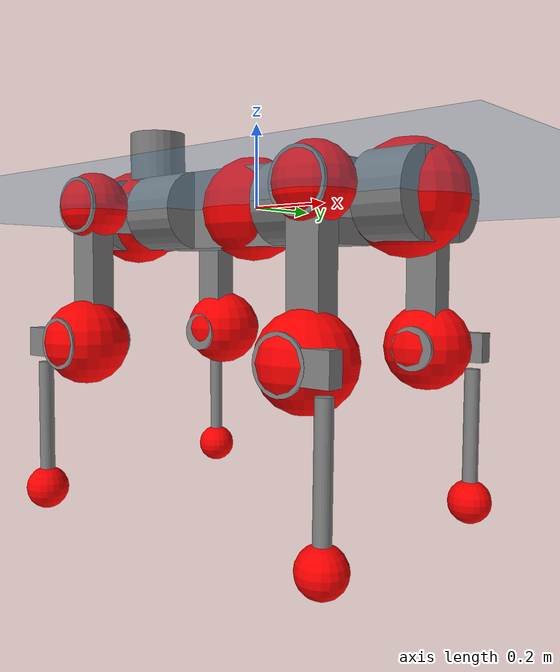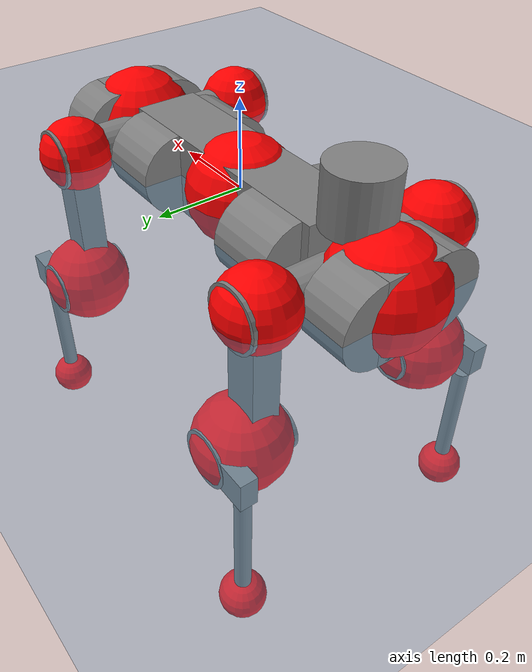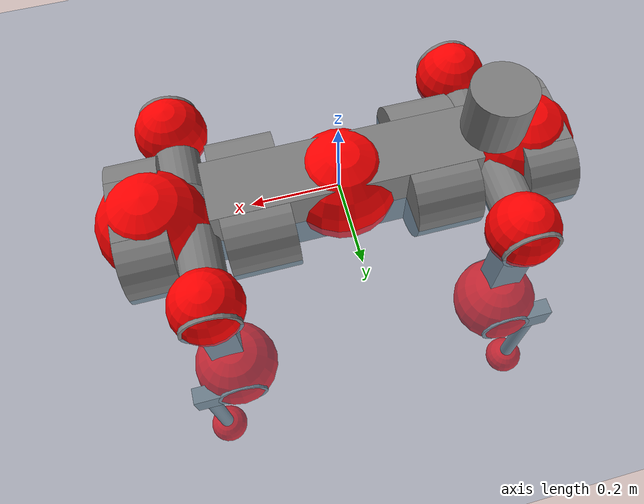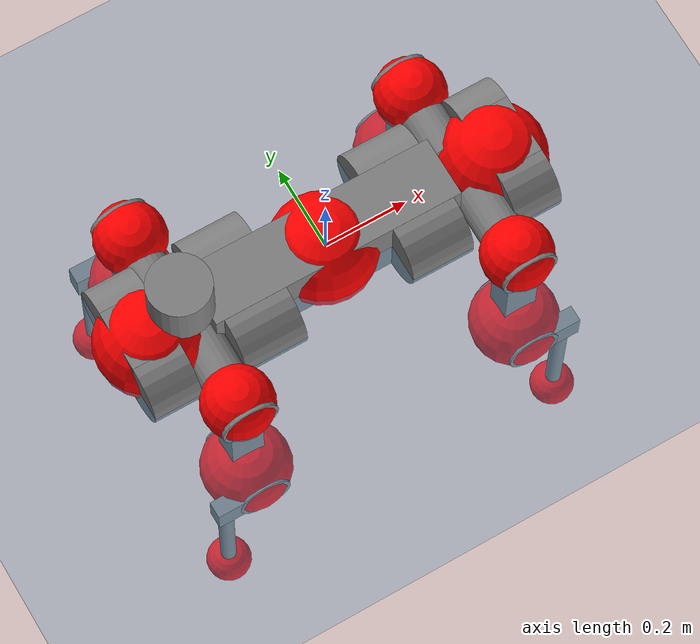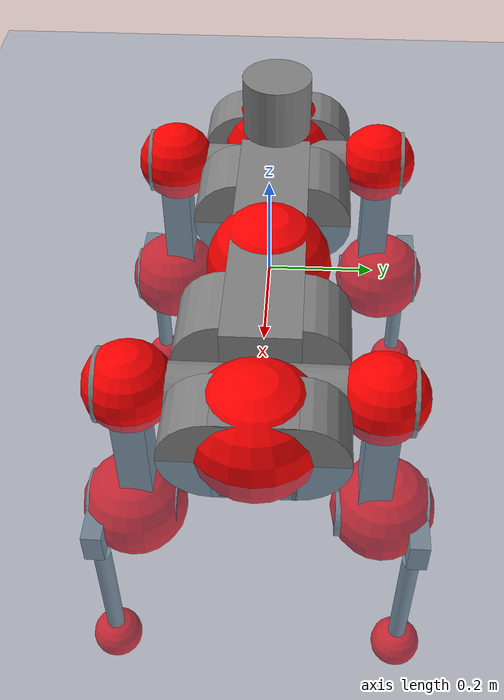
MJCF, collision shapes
<mujoco model="anymal_c">
  <compiler angle="radian" assetdir="assets" balanceinertia="true" inertiafromgeom="false"/>

  <option timestep="0.005" density="1.2" viscosity="2e-05"/>

  <size nkey="1"/>

  <visual>
    <quality shadowsize="8192"/>
    <map shadowclip="0.5"/>
  </visual>

  <default>
    <default class="/">
      <material specular="0" shininess="0.25"/>
      <geom contype="0" conaffinity="0" group="1" solref="-1000 -80"/>
      <site size="0.01 0.005 0.005" group="5"/>
      <general forcelimited="true" forcerange="-80 80" biastype="affine" gainprm="80" biasprm="0 -80 -2"/>
      <default class="anymal_c">
        <joint armature="0.01" damping="0.01" frictionloss="0.1"/>
        <default class="visual">
          <geom type="mesh" group="2"/>
          <default class="visual_zflip"/>
        </default>
        <default class="collision">
          <geom type="cylinder" group="3"/>
          <default class="foot">
            <geom size="0.03 0 0" type="sphere" condim="6" priority="1" friction="0.8 0.02 0.01" solimp="0.015 1 0.03"/>
          </default>
        </default>
      </default>
      <default class="reward_collision_sphere">
        <geom group="5" rgba="1 0 0 1"/>
      </default>
    </default>
  </default>

  <asset>
    <texture type="skybox" colorspace="auto" name="//unnamed_texture_0" builtin="gradient" rgb1="0.95 0.95 0.95" rgb2="0.95 0.95 0.95" width="100" height="600"/>
    <texture type="2d" colorspace="auto" name="texplane" builtin="checker" rgb1="0.345 0.575 0.748" rgb2="0.345 0.575 0.748" markrgb="1 1 1" width="512" height="512"/>
    <texture type="2d" colorspace="linear" name="base" file="base.png"/>
    <texture type="2d" colorspace="linear" name="top_shell" file="top_shell.png"/>
    <texture type="2d" colorspace="linear" name="bottom_shell" file="bottom_shell.png"/>
    <texture type="2d" colorspace="linear" name="remote" file="remote.png"/>
    <texture type="2d" colorspace="linear" name="hatch" file="hatch.png"/>
    <texture type="2d" colorspace="linear" name="handle" file="handle.png"/>
    <texture type="2d" colorspace="linear" name="face" file="face.png"/>
    <texture type="2d" colorspace="linear" name="battery" file="battery.png"/>
    <texture type="2d" colorspace="linear" name="lidar_cage" file="lidar_cage.png"/>
    <texture type="2d" colorspace="linear" name="depth_camera" file="depth_camera.png"/>
    <texture type="2d" colorspace="linear" name="wide_angle_camera" file="wide_angle_camera.png"/>
    <texture type="2d" colorspace="linear" name="lidar" file="lidar.png"/>
    <texture type="2d" colorspace="linear" name="drive" file="drive.png"/>
    <texture type="2d" colorspace="linear" name="hip_l" file="hip_l.png"/>
    <texture type="2d" colorspace="linear" name="shank_l" file="shank_l.png"/>
    <texture type="2d" colorspace="linear" name="foot" file="foot.png"/>
    <texture type="2d" colorspace="linear" name="thigh" file="thigh.png"/>
    <texture type="2d" colorspace="linear" name="shank_r" file="shank_r.png"/>
    <texture type="2d" colorspace="linear" name="hip_r" file="hip_r.png"/>
    <material name="MatPlane" class="/" texture="texplane" texuniform="true" texrepeat="2 2" specular="0.9" shininess="0.5"/>
    <material name="black_plastic" class="/" rgba="0.007 0.007 0.007 1"/>
    <material name="green" class="/" rgba="0.052 0.178 0.033 1"/>
    <material name="red" class="/" rgba="0.178 0.006 0.005 1"/>
    <material name="yellow" class="/" rgba="0.178 0.119 0.006 1"/>
    <material name="lwl" class="/" rgba="0.8 0.8 0.8 1"/>
    <material name="base" class="/" texture="base"/>
    <material name="top_shell" class="/" texture="top_shell"/>
    <material name="bottom_shell" class="/" texture="bottom_shell"/>
    <material name="hip_l" class="/" texture="hip_l"/>
    <material name="thigh" class="/" texture="thigh"/>
    <material name="shank_l" class="/" texture="shank_l"/>
    <material name="foot" class="/" texture="foot"/>
    <material name="hip_r" class="/" texture="hip_r"/>
    <material name="shank" class="/" texture="shank_r"/>
    <material name="hatch" class="/" texture="hatch"/>
    <material name="remote" class="/" texture="remote"/>
    <material name="handle" class="/" texture="handle"/>
    <material name="face" class="/" texture="face"/>
    <material name="depth_camera" class="/" texture="depth_camera"/>
    <material name="wide_angle_camera" class="/" texture="wide_angle_camera"/>
    <material name="battery" class="/" texture="battery"/>
    <material name="lidar_cage" class="/" texture="lidar_cage"/>
    <material name="lidar" class="/" texture="lidar"/>
    <material name="drive" class="/" texture="drive"/>
    <mesh name="base_0" class="/" file="base_0.obj"/>
    <mesh name="base_1" class="/" file="base_1.obj"/>
    <mesh name="base_2" class="/" file="base_2.obj"/>
    <mesh name="base_3" class="/" file="base_3.obj"/>
    <mesh name="base_4" class="/" file="base_4.obj"/>
    <mesh name="base_5" class="/" file="base_5.obj"/>
    <mesh name="top_shell" class="/" file="top_shell.obj"/>
    <mesh name="bottom_shell" class="/" file="bottom_shell.obj"/>
    <mesh name="remote" class="/" file="remote.obj"/>
    <mesh name="handle" class="/" file="handle.obj"/>
    <mesh name="face" class="/" file="face.obj"/>
    <mesh name="wide_angle_camera" class="/" file="wide_angle_camera.obj"/>
    <mesh name="depth_camera" class="/" file="depth_camera.obj"/>
    <mesh name="battery" class="/" file="battery.obj"/>
    <mesh name="lidar_cage" class="/" file="lidar_cage.obj"/>
    <mesh name="lidar" class="/" file="lidar.obj"/>
    <mesh name="drive" class="/" file="drive.obj"/>
    <mesh name="hip_l" class="/" file="hip_l.obj"/>
    <mesh name="thigh" class="/" file="thigh.obj"/>
    <mesh name="shank_l" class="/" file="shank_l.obj"/>
    <mesh name="foot" class="/" file="foot.obj"/>
    <mesh name="hip_r" class="/" file="hip_r.obj"/>
    <mesh name="hatch" class="/" file="hatch.obj"/>
    <mesh name="shank_r" class="/" file="shank_r.obj"/>
  </asset>

  <worldbody>
    <geom name="floor" class="/" size="100 100 0.125" type="plane" group="0" material="MatPlane"/>
    <light name="toplight_shadow" class="/" pos="0 0 5" dir="0.0990148 0.0990148 -0.990148" type="directional" ambient="0.04 0.04 0.04" diffuse="0.55 0.55 0.55" specular="0.12 0.12 0.12"/>
    <light name="toplight_fill" class="/" pos="0 0 5" dir="0.0990148 0.0990148 -0.990148" type="directional" castshadow="false" ambient="0.04 0.04 0.04" diffuse="0.3 0.3 0.3" specular="0.08 0.08 0.08"/>
    <body name="trunk" childclass="anymal_c" pos="-0.00778882 -0.00135857 -0.00190185" quat="1 -0.000176291 -5.45081e-05 -8.76813e-05">
      <inertial pos="0.00175553 -0.00259439 0.056328" quat="0.493374 0.491776 0.509869 0.50475" mass="21.6699" diaginertia="0.396995 0.527108 0.460172"/>
      <joint name="//unnamed_joint_0" type="free" armature="0" damping="0" frictionloss="0"/>
      <geom name="//unnamed_geom_1" class="visual" material="green" mesh="base_0"/>
      <geom name="//unnamed_geom_2" class="visual" material="yellow" mesh="base_1"/>
      <geom name="//unnamed_geom_3" class="visual" material="red" mesh="base_2"/>
      <geom name="//unnamed_geom_4" class="visual" material="black_plastic" mesh="base_3"/>
      <geom name="//unnamed_geom_5" class="visual" material="lwl" mesh="base_4"/>
      <geom name="//unnamed_geom_6" class="visual" material="base" mesh="base_5"/>
      <geom name="trunk_1" class="collision" size="0.300217 0.0724661 0.0931707" type="box"/>
      <geom name="trunk_2" class="collision" size="0.0931707 0.0750542" pos="0.205456 0.0696252 0" quat="0.707107 0 0.707107 0"/>
      <geom name="trunk_3" class="collision" size="0.0931707 0.0750542" pos="-0.205456 0.0696252 0" quat="0.707107 0 0.707107 0"/>
      <geom name="trunk_4" class="collision" size="0.0931707 0.0750542" pos="0.205456 -0.0696252 0" quat="0.707107 0 0.707107 0"/>
      <geom name="trunk_5" class="collision" size="0.0931707 0.0750542" pos="-0.205456 -0.0696252 0" quat="0.707107 0 0.707107 0"/>
      <geom name="//unnamed_geom_12" class="visual" material="top_shell" mesh="top_shell"/>
      <geom name="//unnamed_geom_13" class="visual" material="bottom_shell" mesh="bottom_shell"/>
      <geom name="//unnamed_geom_14" class="visual" material="remote" mesh="remote"/>
      <geom name="//unnamed_geom_15" class="visual" material="handle" mesh="handle"/>
      <geom name="//unnamed_geom_16" class="visual" pos="0.391547 0 0" quat="1 0 0 0" material="face" mesh="face"/>
      <geom name="trunk_6" class="collision" size="0.0569377 0.0724661 0.0931707" pos="0.443501 0 0" type="box"/>
      <geom name="//unnamed_geom_18" class="collision" size="0.0931707 0.0569377" pos="0.443501 0.0696252 0" quat="0.707107 0 0.707107 0"/>
      <geom name="//unnamed_geom_19" class="collision" size="0.0931707 0.0569377" pos="0.443501 -0.0696252 0" quat="0.707107 0 0.707107 0"/>
      <geom name="//unnamed_geom_20" class="visual" pos="0.436095 0 -0.0357452" quat="0.965926 0 0.258819 0" material="depth_camera" mesh="depth_camera"/>
      <geom name="//unnamed_geom_21" class="visual" pos="0.484592 0 0.0174613" material="wide_angle_camera" mesh="wide_angle_camera"/>
      <geom name="//unnamed_geom_22" class="visual_zflip" pos="-0.391547 0 0" quat="0 0 0 1" material="face" mesh="face"/>
      <geom name="trunk_7" class="collision" size="0.0569377 0.0724661 0.0931707" pos="-0.443501 0 0" quat="0 0 0 1" type="box"/>
      <geom name="//unnamed_geom_24" class="collision" size="0.0931707 0.0569377" pos="-0.443501 -0.0696252 0" quat="0 -0.707107 0 0.707107"/>
      <geom name="//unnamed_geom_25" class="collision" size="0.0931707 0.0569377" pos="-0.443501 0.0696252 0" quat="0 -0.707107 0 0.707107"/>
      <geom name="//unnamed_geom_26" class="visual" pos="-0.436095 0 -0.0357452" quat="0 -0.258819 0 0.965926" material="depth_camera" mesh="depth_camera"/>
      <geom name="//unnamed_geom_27" class="visual_zflip" pos="-0.484592 0 0.0174613" quat="0 0 0 1" material="wide_angle_camera" mesh="wide_angle_camera"/>
      <geom name="//unnamed_geom_28" class="visual" material="battery" mesh="battery"/>
      <geom name="//unnamed_geom_29" class="visual" pos="0 0.0767161 0.0321989" quat="0.683013 -0.183013 0.183013 0.683013" material="depth_camera" mesh="depth_camera"/>
      <geom name="//unnamed_geom_30" class="visual" pos="0 -0.0767161 0.0321989" quat="0.683013 0.183013 0.183013 -0.683013" material="depth_camera" mesh="depth_camera"/>
      <geom name="//unnamed_geom_31" class="visual" pos="-0.343843 0 0.085732" quat="1 0 0 0" material="lidar_cage" mesh="lidar_cage"/>
      <geom name="trunk_8" class="collision" size="0.0724661 0.0621138" pos="-0.343843 0 0.155717"/>
      <geom name="//unnamed_geom_33" class="visual" pos="-0.343843 1.9652e-05 0.165865" quat="0.707107 0 0 -0.707107" material="lidar" mesh="lidar"/>
      <geom name="//unnamed_geom_34" class="visual" pos="0.283293 0.103504 -2.96316e-09" quat="0.258819 0.965926 0 0" material="drive" mesh="drive"/>
      <geom name="//unnamed_geom_35" class="visual" pos="0.283293 -0.103504 2.96316e-09" quat="0.258819 -0.965926 0 0" material="drive" mesh="drive"/>
      <geom name="//unnamed_geom_36" class="visual" pos="-0.283293 0.103504 2.96316e-09" quat="0 0 0.965926 -0.258819" material="drive" mesh="drive"/>
      <geom name="//unnamed_geom_37" class="visual" pos="-0.283293 -0.103504 -2.96316e-09" quat="0 0 -0.965926 -0.258819" material="drive" mesh="drive"/>
      <geom name="//unnamed_geom_38" class="visual" pos="0.109576 0 0.0851487" quat="1 0 0 0" material="hatch" mesh="hatch"/>
      <geom name="//unnamed_geom_39" class="reward_collision_sphere" size="0.124228"/>
      <geom name="//unnamed_geom_40" class="reward_collision_sphere" size="0.124228" pos="0.425081 0 0"/>
      <geom name="//unnamed_geom_41" class="reward_collision_sphere" size="0.124228" pos="-0.425081 0 0"/>
      <site name="imu" pos="0.235194 0.000751185 0.100351" size="0.0103523"/>
      <camera name="track" pos="0 -1.98929 0" quat="0.707107 0.707107 0 0" mode="trackcom"/>
      <camera name="ego_camera" pos="0.425081 0 -0.0466568" quat="-0.5 -0.5 0.5 0.5"/>
      <body name="LF_HIP" pos="0.286116 0.106365 0.00331706" quat="0.261995 0.965068 -0.00107025 -0.000334236">
        <inertial pos="0.0622337 -0.0136179 -0.0105219" quat="-0.128957 0.708675 -0.138085 0.679766" mass="2.98774" diaginertia="0.0042613 0.00498657 0.00679978"/>
        <joint name="LF_HAA" pos="0 0 0" axis="0.998594 0.0143009 0.0510514" stiffness="0.0390076" range="-0.758695 0.499393" armature="0.0149215" damping="0.0148663" frictionloss="0.0905062"/>
        <geom name="//unnamed_geom_42" class="visual" pos="0 -0.000174309 2.86301e-05" quat="0.258819 -0.965926 0 0" material="hip_l" mesh="hip_l"/>
        <geom name="//unnamed_geom_43" class="visual" pos="0.056583 -0.0692819 -0.0412705" quat="0.183013 -0.683013 0.683013 0.183013" material="drive" mesh="drive"/>
        <geom name="//unnamed_geom_44" class="collision" size="0.0517615 0.0724661" pos="0.056583 -0.0118958 -0.00805414" quat="-0.353553 -0.612372 0.612372 -0.353553"/>
        <body name="LF_THIGH" pos="0.0608795 -0.0743042 -0.045375" quat="0.182123 -0.683065 0.683269 0.182748">
          <inertial pos="0.0276452 -0.000364403 -0.276796" quat="0.994234 0.00127491 -0.0748279 0.0767937" mass="3.51973" diaginertia="0.0234589 0.0293248 0.0089289"/>
          <joint name="LF_HFE" pos="0 0 0" axis="0.999897 0.00615409 0.012979" stiffness="0.0198913" range="-3.17622 3.13749" armature="0.00655056" damping="0.0236483" frictionloss="0.121691"/>
          <geom name="//unnamed_geom_45" class="visual" pos="-0.000995224 -1.56824e-06 0" quat="0.707107 0 0 -0.707107" material="thigh" mesh="thigh"/>
          <geom name="//unnamed_geom_46" class="collision" size="0.06729 0.0414092" pos="0.037785 0 0" quat="0.5 0.5 -0.5 -0.5"/>
          <geom name="//unnamed_geom_47" class="collision" size="0.0388211 0.0310569 0.146293" pos="0.0283387 0 -0.164832" quat="0.707107 0 0 -0.707107" type="box"/>
          <geom name="//unnamed_geom_48" class="visual" pos="0.0947458 0 -0.33243" quat="1 0 0 0" material="drive" mesh="drive"/>
          <geom name="//unnamed_geom_49" class="collision" size="0.0517615 0.0724661" pos="0.0286221 0 -0.33243" quat="0.707107 0 0.707107 0"/>
          <geom name="//unnamed_geom_50" class="reward_collision_sphere" size="0.0828184" pos="0.0236156 0 0"/>
          <body name="LF_SHANK" pos="0.0971563 0.0100991 -0.332636" quat="0.999997 0.00184889 0.00166477 -0.000779907">
            <inertial pos="0.00277908 -0.0614282 -0.0941294" quat="0.987917 -0.154401 0.00950164 -0.0095083" mass="0.591335" diaginertia="0.00780165 0.00862316 0.00250002"/>
            <joint name="LF_KFE" pos="0 0 0" axis="0.999994 -0.00321184 0.00145727" stiffness="0.0030759" range="-3.12048 3.11249" armature="0.0105566" damping="0.0321003" frictionloss="0.112865"/>
            <geom name="//unnamed_geom_51" class="visual" pos="-0.000324521 -0.00173036 0" quat="0.707107 0 0 -0.707107" material="shank_l" mesh="shank_l"/>
            <geom name="LF_kfe_act" class="collision" size="0.0621138 0.0207046" pos="0.0188925 0 0" quat="0.5 0.5 -0.5 -0.5"/>
            <geom name="//unnamed_geom_53" class="collision" size="0.0595247 0.034939 0.0196694" pos="0.0188925 -0.0571911 0" quat="0.5 0.5 -0.5 -0.5" type="box"/>
            <geom name="//unnamed_geom_54" class="visual" pos="0.0123274 -0.0880367 -0.394215" quat="0.382683 0 0 -0.92388" material="foot" mesh="foot"/>
            <geom name="LF_calf" class="collision" size="0.0181165 0.146228" pos="0.0123273 -0.087479 -0.197108" quat="0.707107 0 0 -0.707107"/>
            <geom name="LF_foot" class="foot" size="0.0253891" pos="0.0123273 -0.087479 -0.367971" quat="0.707107 0 0 -0.707107"/>
            <geom name="//unnamed_geom_57" class="reward_collision_sphere" size="0.103523" pos="-0.0472312 0 0"/>
            <geom name="//unnamed_geom_58" class="reward_collision_sphere" size="0.0517615" pos="0.0123273 -0.087479 -0.367971"/>
            <site name="LF_foot" class="foot" pos="0.0123273 -0.087479 -0.367971" quat="0.707107 0 0 -0.707107" size="0.0103523"/>
          </body>
        </body>
      </body>
      <body name="RF_HIP" pos="0.293202 -0.112978 0.00653088" quat="0.258634 -0.965974 0.00137937 0.000321321">
        <inertial pos="0.0440962 0.0154004 -0.00136395" quat="0.146079 0.683355 0.141368 0.701214" mass="2.78749" diaginertia="0.00381755 0.00449052 0.00634431"/>
        <joint name="RF_HAA" pos="0 0 0" axis="0.99929 -0.034435 -0.0153079" range="-0.319673 0.753225" armature="0.0107412" damping="0.0192222" frictionloss="0.139019"/>
        <geom name="//unnamed_geom_59" class="visual" pos="0 0.000174308 2.863e-05" quat="0.258819 0.965926 0 0" material="hip_r" mesh="hip_r"/>
        <geom name="//unnamed_geom_60" class="visual" pos="0.056583 0.0692819 -0.0412705" quat="0.183013 0.683013 0.683013 -0.183013" material="drive" mesh="drive"/>
        <geom name="//unnamed_geom_61" class="collision" size="0.0517615 0.0724661" pos="0.056583 0.0118958 -0.00805414" quat="-0.353553 0.612372 0.612372 0.353553"/>
        <body name="RF_THIGH" pos="0.0573965 0.0726684 -0.0525597" quat="0.182848 0.682894 0.683245 -0.182756">
          <inertial pos="0.0319216 -0.0106321 -0.286505" quat="0.992883 -0.00625808 -0.0793797 0.0885607" mass="3.36595" diaginertia="0.0224492 0.0293299 0.00899317"/>
          <joint name="RF_HFE" pos="0 0 0" axis="0.999751 -0.020152 -0.0095523" range="-3.1748 3.08665" armature="0.0103872" damping="0.0344586" frictionloss="0.108523"/>
          <geom name="//unnamed_geom_62" class="visual" pos="-0.000995224 -1.56824e-06 0" quat="0.707107 0 0 -0.707107" material="thigh" mesh="thigh"/>
          <geom name="//unnamed_geom_63" class="collision" size="0.06729 0.0414092" pos="0.037785 0 0" quat="0.5 0.5 0.5 0.5"/>
          <geom name="//unnamed_geom_64" class="collision" size="0.0388211 0.0310569 0.146293" pos="0.0283387 0 -0.164832" quat="0.707107 0 0 0.707107" type="box"/>
          <geom name="//unnamed_geom_65" class="visual" pos="0.0947458 0 -0.33243" quat="1 0 0 0" material="drive" mesh="drive"/>
          <geom name="//unnamed_geom_66" class="collision" size="0.0517615 0.0724661" pos="0.0286221 0 -0.33243" quat="0.707107 0 0.707107 0"/>
          <geom name="//unnamed_geom_67" class="reward_collision_sphere" size="0.0828184" pos="0.0236156 0 0"/>
          <body name="RF_SHANK" pos="0.0906958 -3.84595e-05 -0.339491" quat="0.999988 -0.00299069 -0.00332601 -0.00178965">
            <inertial pos="-0.00563003 0.0653589 -0.10091" quat="0.992986 0.115455 -0.00647801 0.0246451" mass="0.696967" diaginertia="0.00725208 0.00804156 0.00208847"/>
            <joint name="RF_KFE" pos="0 0 0" axis="0.999998 -0.00147494 -0.00108689" range="-2.96383 3.09981" armature="0.0111978" damping="0" frictionloss="0.0643806"/>
            <geom name="//unnamed_geom_68" class="visual" pos="-0.000324519 0.00173036 0" quat="0.707107 0 0 0.707107" material="shank" mesh="shank_r"/>
            <geom name="RF_kfe_act" class="collision" size="0.0621138 0.0207046" pos="0.0188925 0 0" quat="0.5 0.5 0.5 0.5"/>
            <geom name="//unnamed_geom_70" class="collision" size="0.0595247 0.034939 0.0196694" pos="0.0188925 0.0571911 0" quat="0.5 0.5 0.5 0.5" type="box"/>
            <geom name="//unnamed_geom_71" class="visual" pos="0.0123273 0.0880367 -0.394215" quat="0.382683 0 0 0.92388" material="foot" mesh="foot"/>
            <geom name="RF_calf" class="collision" size="0.0181165 0.146228" pos="0.0123273 0.087479 -0.197108" quat="0.707107 0 0 0.707107"/>
            <geom name="RF_foot" class="foot" size="0.0308443" pos="0.0123273 0.087479 -0.367971" quat="0.707107 0 0 0.707107"/>
            <geom name="//unnamed_geom_74" class="reward_collision_sphere" size="0.103523" pos="-0.0472312 0 0"/>
            <geom name="//unnamed_geom_75" class="reward_collision_sphere" size="0.0517615" pos="0.0123273 0.087479 -0.367971"/>
            <site name="RF_foot" class="foot" pos="0.0123273 0.087479 -0.367971" quat="0.707107 0 0 0.707107" size="0.0103523"/>
          </body>
        </body>
      </body>
      <body name="LH_HIP" pos="-0.294287 0.110974 0.00189125" quat="6.71459e-05 -0.000250268 0.965932 -0.258796">
        <inertial pos="0.0447046 0.0256664 -0.00933622" quat="0.11076 0.679365 0.15552 0.708525" mass="3.15541" diaginertia="0.00436534 0.00473238 0.00767891"/>
        <joint name="LH_HAA" pos="0 0 0" axis="0.999952 0.00708039 0.0068424" range="-0.589517 0.69478" armature="0.0106292" damping="0.00575156" frictionloss="0.107789"/>
        <geom name="//unnamed_geom_76" class="visual" pos="0 0.000174308 2.863e-05" quat="-0.258819 -0.965926 0 0" material="hip_r" mesh="hip_r"/>
        <geom name="//unnamed_geom_77" class="visual" pos="0.056583 0.0692819 -0.0412705" quat="0.183013 0.683013 0.683013 -0.183013" material="drive" mesh="drive"/>
        <geom name="//unnamed_geom_78" class="collision" size="0.0517615 0.0724661" pos="0.056583 0.0118958 -0.00805414" quat="-0.353553 0.612372 0.612372 0.353553"/>
        <body name="LH_THIGH" pos="0.0531981 0.0704383 -0.0520506" quat="0.183312 0.682718 0.683163 -0.18325">
          <inertial pos="0.0298562 -0.00921386 -0.284428" quat="0.989912 -0.0277309 -0.0916234 0.104452" mass="3.21034" diaginertia="0.0225015 0.0278219 0.00950524"/>
          <joint name="LH_HFE" pos="0 0 0" axis="0.999153 0.0410417 -0.00284538" stiffness="0.0262954" range="-3.23897 3.05602" armature="0.00604091" damping="0.00491349" frictionloss="0.0675647"/>
          <geom name="//unnamed_geom_79" class="visual" pos="-0.000995224 -1.56824e-06 0" quat="0.707107 0 0 -0.707107" material="thigh" mesh="thigh"/>
          <geom name="//unnamed_geom_80" class="collision" size="0.06729 0.0414092" pos="0.037785 0 0" quat="0.5 0.5 -0.5 -0.5"/>
          <geom name="//unnamed_geom_81" class="collision" size="0.0388211 0.0310569 0.146293" pos="0.0283387 0 -0.164832" quat="0.707107 0 0 -0.707107" type="box"/>
          <geom name="//unnamed_geom_82" class="visual" pos="0.0947458 0 -0.33243" quat="1 0 0 0" material="drive" mesh="drive"/>
          <geom name="//unnamed_geom_83" class="collision" size="0.0517615 0.0724661" pos="0.0286221 0 -0.33243" quat="0.707107 0 0.707107 0"/>
          <geom name="//unnamed_geom_84" class="reward_collision_sphere" size="0.0828184" pos="0.0236156 0 0"/>
          <body name="LH_SHANK" pos="0.0988479 -0.0068442 -0.322287" quat="0.999987 0.00312674 -0.00299828 -0.00259553">
            <inertial pos="0.00697136 0.0605465 -0.104987" quat="0.994559 0.1018 0.00464253 0.0216193" mass="0.727155" diaginertia="0.00756234 0.0093272 0.0024932"/>
            <joint name="LH_KFE" pos="0 0 0" axis="0.999974 0.00702416 0.00151044" stiffness="0.0104832" range="-3.13429 3.22509" armature="0.0105337" damping="0.0167219" frictionloss="0.135019"/>
            <geom name="//unnamed_geom_85" class="visual" pos="-0.000324519 0.00173036 0" quat="-0.707107 0 0 -0.707107" material="shank" mesh="shank_r"/>
            <geom name="LH_kfe_act" class="collision" size="0.0621138 0.0207046" pos="0.0188925 0 0" quat="0.5 0.5 -0.5 -0.5"/>
            <geom name="//unnamed_geom_87" class="collision" size="0.0595247 0.034939 0.0196694" pos="0.0188925 0.0571911 0" quat="0.5 0.5 -0.5 -0.5" type="box"/>
            <geom name="//unnamed_geom_88" class="visual" pos="0.0123273 0.0880367 -0.394215" quat="-0.382683 0 0 -0.92388" material="foot" mesh="foot"/>
            <geom name="LH_calf" class="collision" size="0.0181165 0.146228" pos="0.0123273 0.087479 -0.197108" quat="0.707107 0 0 -0.707107"/>
            <geom name="LH_foot" class="foot" size="0.0385751" pos="0.0123273 0.087479 -0.367971" quat="0.707107 0 0 -0.707107"/>
            <geom name="//unnamed_geom_91" class="reward_collision_sphere" size="0.103523" pos="-0.0472312 0 0"/>
            <geom name="//unnamed_geom_92" class="reward_collision_sphere" size="0.0517615" pos="0.0123273 0.087479 -0.367971"/>
            <site name="LH_foot" class="foot" pos="0.0123273 0.087479 -0.367971" quat="0.707107 0 0 -0.707107" size="0.0103523"/>
          </body>
        </body>
      </body>
      <body name="RH_HIP" pos="-0.274317 -0.105176 -0.00164505" quat="0.000121453 -0.000334478 -0.965827 -0.259189">
        <inertial pos="0.0481338 -0.0182399 -0.00991892" quat="-0.152212 0.730783 -0.146481 0.6491" mass="3.02214" diaginertia="0.00415359 0.00445972 0.00664916"/>
        <joint name="RH_HAA" pos="0 0 0" axis="0.99887 0.0331197 -0.0340745" range="-0.733967 0.479248" armature="0.0110779" damping="0" frictionloss="0.111669"/>
        <geom name="//unnamed_geom_93" class="visual" pos="0 -0.000174309 2.86301e-05" quat="-0.258819 0.965926 0 0" material="hip_l" mesh="hip_l"/>
        <geom name="//unnamed_geom_94" class="visual" pos="0.056583 -0.0692819 -0.0412705" quat="-0.183013 0.683013 -0.683013 -0.183013" material="drive" mesh="drive"/>
        <geom name="//unnamed_geom_95" class="collision" size="0.0517615 0.0724661" pos="0.056583 -0.0118958 -0.00805414" quat="0.353553 0.612372 -0.612372 0.353553"/>
        <body name="RH_THIGH" pos="0.0585603 -0.0723101 -0.0566479" quat="-0.183418 0.682713 -0.683163 -0.183165">
          <inertial pos="0.0294572 -0.00219808 -0.286861" quat="0.995343 0.0314563 -0.0771074 0.0485443" mass="3.4412" diaginertia="0.0225564 0.0270424 0.00797853"/>
          <joint name="RH_HFE" pos="0 0 0" axis="1 0.0002794 0.00045771" stiffness="0.0260953" range="-3.11357 3.12256" armature="0.0071211" damping="0.0439099" frictionloss="0.117207"/>
          <geom name="//unnamed_geom_96" class="visual" pos="-0.000995224 -1.56824e-06 0" quat="0.707107 0 0 -0.707107" material="thigh" mesh="thigh"/>
          <geom name="//unnamed_geom_97" class="collision" size="0.06729 0.0414092" pos="0.037785 0 0" quat="0.5 0.5 0.5 0.5"/>
          <geom name="//unnamed_geom_98" class="collision" size="0.0388211 0.0310569 0.146293" pos="0.0283387 0 -0.164832" quat="0.707107 0 0 0.707107" type="box"/>
          <geom name="//unnamed_geom_99" class="visual" pos="0.0947458 0 -0.33243" quat="1 0 0 0" material="drive" mesh="drive"/>
          <geom name="//unnamed_geom_100" class="collision" size="0.0517615 0.0724661" pos="0.0286221 0 -0.33243" quat="0.707107 0 0.707107 0"/>
          <geom name="//unnamed_geom_101" class="reward_collision_sphere" size="0.0828184" pos="0.0236156 0 0"/>
          <body name="RH_SHANK" pos="0.096608 -0.00229031 -0.334338" quat="1 -3.66989e-05 -0.000319757 0.000328207">
            <inertial pos="0.0127907 -0.0512477 -0.102919" quat="0.992565 -0.120232 -0.00544945 -0.0181533" mass="0.582543" diaginertia="0.007906 0.00799196 0.00236053"/>
            <joint name="RH_KFE" pos="0 0 0" axis="0.999988 0.00101264 0.0048685" range="-3.11727 2.9625" armature="0.0100691" damping="0.0061261" frictionloss="0.0563942"/>
            <geom name="//unnamed_geom_102" class="visual" pos="-0.000324521 -0.00173036 0" quat="0.707107 0 0 -0.707107" material="shank_l" mesh="shank_l"/>
            <geom name="RH_kfe_act" class="collision" size="0.0621138 0.0207046" pos="0.0188925 0 0" quat="0.5 0.5 0.5 0.5"/>
            <geom name="//unnamed_geom_104" class="collision" size="0.0595247 0.034939 0.0196694" pos="0.0188925 -0.0571911 0" quat="0.5 0.5 0.5 0.5" type="box"/>
            <geom name="//unnamed_geom_105" class="visual" pos="0.0123274 -0.0880367 -0.394215" quat="0.382683 0 0 -0.92388" material="foot" mesh="foot"/>
            <geom name="RH_calf" class="collision" size="0.0181165 0.146228" pos="0.0123273 -0.087479 -0.197108" quat="0.707107 0 0 0.707107"/>
            <geom name="RH_foot" class="foot" size="0.0210408" pos="0.0123273 -0.087479 -0.367971" quat="0.707107 0 0 0.707107"/>
            <geom name="//unnamed_geom_108" class="reward_collision_sphere" size="0.103523" pos="-0.0472312 0 0"/>
            <geom name="//unnamed_geom_109" class="reward_collision_sphere" size="0.0517615" pos="0.0123273 -0.087479 -0.367971"/>
            <site name="RH_foot" class="foot" pos="0.0123273 -0.087479 -0.367971" quat="0.707107 0 0 0.707107" size="0.0103523"/>
          </body>
        </body>
      </body>
    </body>
  </worldbody>

  <contact>
    <pair class="/" geom1="floor" geom2="LF_foot" name="//unnamed_contact_0"/>
    <pair class="/" geom1="floor" geom2="RF_foot" name="//unnamed_contact_1"/>
    <pair class="/" geom1="floor" geom2="LH_foot" name="//unnamed_contact_2"/>
    <pair class="/" geom1="floor" geom2="RH_foot" name="//unnamed_contact_3"/>
  </contact>

  <actuator>
    <general name="LF_HAA" class="/" joint="LF_HAA" forcerange="-81.6581 81.6581" gainprm="81.3536" biasprm="0 -81.3536 -2.06297"/>
    <general name="LF_HFE" class="/" joint="LF_HFE" forcerange="-104.276 104.276" gainprm="81.3536" biasprm="0 -81.3536 -2.06297"/>
    <general name="LF_KFE" class="/" joint="LF_KFE" forcerange="-77.299 77.299" gainprm="81.3536" biasprm="0 -81.3536 -2.06297"/>
    <general name="RF_HAA" class="/" joint="RF_HAA" forcerange="-85.7861 85.7861" gainprm="81.3536" biasprm="0 -81.3536 -2.06297"/>
    <general name="RF_HFE" class="/" joint="RF_HFE" forcerange="-89.477 89.477" gainprm="81.3536" biasprm="0 -81.3536 -2.06297"/>
    <general name="RF_KFE" class="/" joint="RF_KFE" forcerange="-71.2337 71.2337" gainprm="81.3536" biasprm="0 -81.3536 -2.06297"/>
    <general name="LH_HAA" class="/" joint="LH_HAA" forcerange="-83.0848 83.0848" gainprm="81.3536" biasprm="0 -81.3536 -2.06297"/>
    <general name="LH_HFE" class="/" joint="LH_HFE" forcerange="-70.1828 70.1828" gainprm="81.3536" biasprm="0 -81.3536 -2.06297"/>
    <general name="LH_KFE" class="/" joint="LH_KFE" forcerange="-93.3349 93.3349" gainprm="81.3536" biasprm="0 -81.3536 -2.06297"/>
    <general name="RH_HAA" class="/" joint="RH_HAA" forcerange="-78.4358 78.4358" gainprm="81.3536" biasprm="0 -81.3536 -2.06297"/>
    <general name="RH_HFE" class="/" joint="RH_HFE" forcerange="-82.0359 82.0359" gainprm="81.3536" biasprm="0 -81.3536 -2.06297"/>
    <general name="RH_KFE" class="/" joint="RH_KFE" forcerange="-114.261 114.261" gainprm="81.3536" biasprm="0 -81.3536 -2.06297"/>
  </actuator>

  <sensor>
    <gyro site="imu" name="imu_angular_velocity"/>
    <velocimeter site="imu" name="imu_linear_velocity"/>
    <framelinvel objtype="site" objname="LF_foot" name="LF_foot_global_linear_velocity"/>
    <framelinvel objtype="site" objname="RF_foot" name="RF_foot_global_linear_velocity"/>
    <framelinvel objtype="site" objname="LH_foot" name="LH_foot_global_linear_velocity"/>
    <framelinvel objtype="site" objname="RH_foot" name="RH_foot_global_linear_velocity"/>
  </sensor>

  <keyframe>
    <key name="home" qpos="0 0 0.55 1 0 0 0 0 0.4 -0.8 0 -0.4 0.8 0 -0.4 0.8 0 0.4 -0.8"/>
  </keyframe>
</mujoco>
